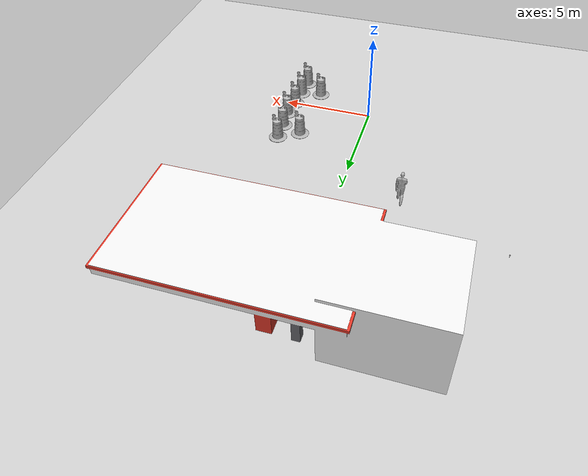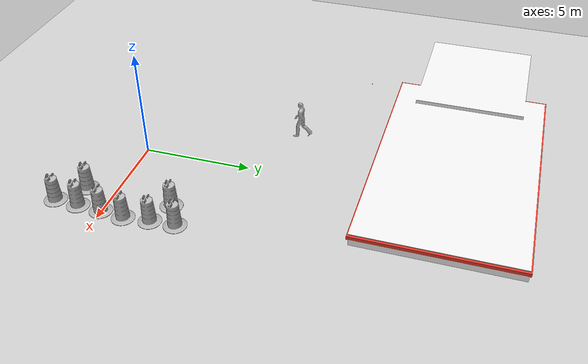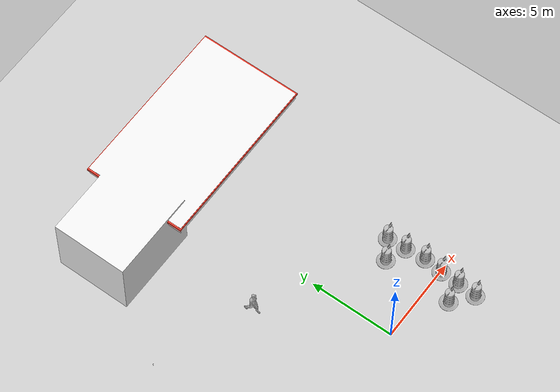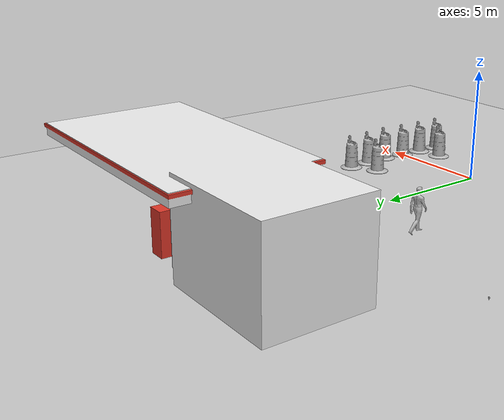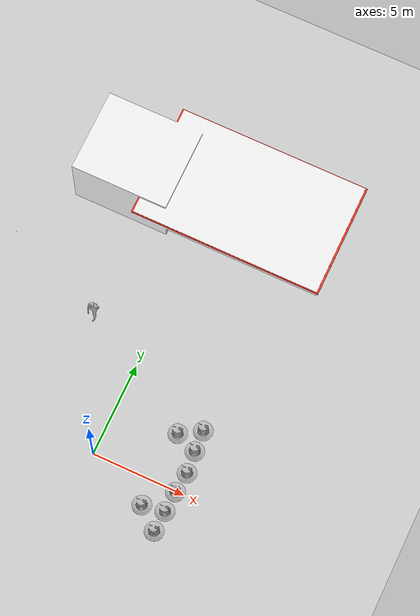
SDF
<sdf version="1.6">
 <world name="default">
  <light name="sun" type="directional">
   <pose>0 0 10 0 -0 0</pose>
   <diffuse>0.8 0.8 0.8 1</diffuse>
   <specular>0.1 0.1 0.1 1</specular>
   <attenuation>
    <range>1000</range>
    <constant>0.9</constant>
    <linear>0.01</linear>
    <quadratic>0.001</quadratic>
   </attenuation>
   <direction>-0.5 0.5 -1</direction>
  </light>
  <model name="ground_plane">
   <static>1</static>
   <link name="link">
    <collision name="collision">
     <geometry><plane><normal>0 0 1</normal><size>100 100</size></plane></geometry>
     <surface><friction><ode><mu>100</mu><mu2>50</mu2></ode></friction></surface>
    </collision>
    <visual name="visual">
     <cast_shadows>0</cast_shadows>
     <geometry><plane><normal>0 0 1</normal><size>100 100</size></plane></geometry>
     <material>
      <script><uri>file://media/materials/scripts/gazebo.material</uri><name>Gazebo/Grey</name></script>
     </material>
    </visual>
   </link>
  </model>
  <gravity>0 0 -9.8</gravity>
  <magnetic_field>6e-06 2.3e-05 -4.2e-05</magnetic_field>
  <atmosphere type="adiabatic"/>
  <physics name="default_physics" default="0" type="ode">
   <max_step_size>0.001</max_step_size>
   <real_time_factor>1</real_time_factor>
   <real_time_update_rate>1000</real_time_update_rate>
  </physics>
  <scene><ambient>0.4 0.4 0.4 1</ambient><background>0.7 0.7 0.7 1</background><shadows>1</shadows></scene>
  <spherical_coordinates>
   <surface_model>EARTH_WGS84</surface_model>
   <latitude_deg>0</latitude_deg>
   <longitude_deg>0</longitude_deg>
   <elevation>0</elevation>
   <heading_deg>0</heading_deg>
  </spherical_coordinates>
  <model name="Gas Station">
   <static>1</static>
   <link name="link">
    <collision name="collision">
     <geometry><mesh><uri>model://gas_station/meshes/gas_station.dae</uri><scale>1 1 1</scale></mesh></geometry>
    </collision>
    <visual name="visual">
     <geometry><mesh><uri>model://gas_station/meshes/gas_station.dae</uri><scale>1 1 1</scale></mesh></geometry>
     <material>
      <script>
       <uri>model://gas_station/materials/scripts</uri>
       <uri>model://gas_station/materials/textures</uri>
       <name>GasStation/Diffuse</name>
      </script>
      <shader type="normal_map_object_space"><normal_map>GasStation_Normal.png</normal_map></shader>
     </material>
    </visual>
   </link>
   <pose>-0.457773 14.2304 0 0 -0 0</pose>
  </model>
  <model name="Construction Barrel">
   <static>1</static>
   <link name="link">
    <inertial>
     <pose>0 0 0.4 0 -0 0</pose>
     <mass>500</mass>
     <inertia><ixx>51.2096</ixx><iyy>51.2096</iyy><izz>25</izz><ixy>0</ixy><ixz>0</ixz><iyz>0</iyz></inertia>
    </inertial>
    <collision name="collision">
     <geometry>
      <mesh><uri>model://construction_barrel/meshes/construction_barrel.dae</uri><scale>1 1 1</scale></mesh>
     </geometry>
    </collision>
    <visual name="visual">
     <geometry>
      <mesh><uri>model://construction_barrel/meshes/construction_barrel.dae</uri><scale>1 1 1</scale></mesh>
     </geometry>
    </visual>
   </link>
   <pose>4.4348 -2.26086 0 0 -0 0</pose>
  </model>
  <model name="Construction Barrel_0">
   <static>1</static>
   <link name="link">
    <inertial>
     <pose>0 0 0.4 0 -0 0</pose>
     <mass>500</mass>
     <inertia><ixx>51.2096</ixx><iyy>51.2096</iyy><izz>25</izz><ixy>0</ixy><ixz>0</ixz><iyz>0</iyz></inertia>
    </inertial>
    <collision name="collision">
     <geometry>
      <mesh><uri>model://construction_barrel/meshes/construction_barrel.dae</uri><scale>1 1 1</scale></mesh>
     </geometry>
    </collision>
    <visual name="visual">
     <geometry>
      <mesh><uri>model://construction_barrel/meshes/construction_barrel.dae</uri><scale>1 1 1</scale></mesh>
     </geometry>
    </visual>
   </link>
   <pose>4.49526 -1.1404 0 0 -0 0</pose>
  </model>
  <model name="Construction Barrel_1">
   <static>1</static>
   <link name="link">
    <inertial>
     <pose>0 0 0.4 0 -0 0</pose>
     <mass>500</mass>
     <inertia><ixx>51.2096</ixx><iyy>51.2096</iyy><izz>25</izz><ixy>0</ixy><ixz>0</ixz><iyz>0</iyz></inertia>
    </inertial>
    <collision name="collision">
     <geometry>
      <mesh><uri>model://construction_barrel/meshes/construction_barrel.dae</uri><scale>1 1 1</scale></mesh>
     </geometry>
    </collision>
    <visual name="visual">
     <geometry>
      <mesh><uri>model://construction_barrel/meshes/construction_barrel.dae</uri><scale>1 1 1</scale></mesh>
     </geometry>
    </visual>
   </link>
   <pose>4.4849 3.37332 0 0 -0 0</pose>
  </model>
  <model name="Speed limit">
   <static>1</static>
   <link name="link">
    <collision name="collision">
     <geometry>
      <mesh><scale>1 1 1</scale><uri>model://speed_limit_sign/meshes/speed_limit_sign.dae</uri></mesh>
     </geometry>
    </collision>
    <visual name="visual">
     <geometry>
      <mesh><scale>1 1 1</scale><uri>model://speed_limit_sign/meshes/speed_limit_sign.dae</uri></mesh>
     </geometry>
    </visual>
   </link>
   <pose>-8.69421 8.84948 0 0 -0 0</pose>
  </model>
  <model name="Construction Barrel_1_clone">
   <static>1</static>
   <link name="link">
    <inertial>
     <pose>0 0 0.4 0 -0 0</pose>
     <mass>500</mass>
     <inertia><ixx>51.2096</ixx><iyy>51.2096</iyy><izz>25</izz><ixy>0</ixy><ixz>0</ixz><iyz>0</iyz></inertia>
    </inertial>
    <collision name="collision">
     <geometry>
      <mesh><uri>model://construction_barrel/meshes/construction_barrel.dae</uri><scale>1 1 1</scale></mesh>
     </geometry>
    </collision>
    <visual name="visual">
     <geometry>
      <mesh><uri>model://construction_barrel/meshes/construction_barrel.dae</uri><scale>1 1 1</scale></mesh>
     </geometry>
    </visual>
   </link>
   <pose>4.54013 2.2502 0 0 -0 0</pose>
  </model>
  <model name="Construction Barrel_1_clone_0">
   <static>1</static>
   <link name="link">
    <inertial>
     <pose>0 0 0.4 0 -0 0</pose>
     <mass>500</mass>
     <inertia><ixx>51.2096</ixx><iyy>51.2096</iyy><izz>25</izz><ixy>0</ixy><ixz>0</ixz><iyz>0</iyz></inertia>
    </inertial>
    <collision name="collision">
     <geometry>
      <mesh><uri>model://construction_barrel/meshes/construction_barrel.dae</uri><scale>1 1 1</scale></mesh>
     </geometry>
    </collision>
    <visual name="visual">
     <geometry>
      <mesh><uri>model://construction_barrel/meshes/construction_barrel.dae</uri><scale>1 1 1</scale></mesh>
     </geometry>
    </visual>
   </link>
   <pose>4.66215 1.07496 0 0 -0 0</pose>
  </model>
  <model name="Construction Barrel_1_clone_1">
   <static>1</static>
   <link name="link">
    <inertial>
     <pose>0 0 0.4 0 -0 0</pose>
     <mass>500</mass>
     <inertia><ixx>51.2096</ixx><iyy>51.2096</iyy><izz>25</izz><ixy>0</ixy><ixz>0</ixz><iyz>0</iyz></inertia>
    </inertial>
    <collision name="collision">
     <geometry>
      <mesh><uri>model://construction_barrel/meshes/construction_barrel.dae</uri><scale>1 1 1</scale></mesh>
     </geometry>
    </collision>
    <visual name="visual">
     <geometry>
      <mesh><uri>model://construction_barrel/meshes/construction_barrel.dae</uri><scale>1 1 1</scale></mesh>
     </geometry>
    </visual>
   </link>
   <pose>4.53996 -0.028882 0 0 -0 0</pose>
  </model>
  <model name="Construction Barrel_1_clone_2">
   <static>1</static>
   <link name="link">
    <inertial>
     <pose>0 0 0.4 0 -0 0</pose>
     <mass>500</mass>
     <inertia><ixx>51.2096</ixx><iyy>51.2096</iyy><izz>25</izz><ixy>0</ixy><ixz>0</ixz><iyz>0</iyz></inertia>
    </inertial>
    <collision name="collision">
     <geometry>
      <mesh><uri>model://construction_barrel/meshes/construction_barrel.dae</uri><scale>1 1 1</scale></mesh>
     </geometry>
    </collision>
    <visual name="visual">
     <geometry>
      <mesh><uri>model://construction_barrel/meshes/construction_barrel.dae</uri><scale>1 1 1</scale></mesh>
     </geometry>
    </visual>
   </link>
   <pose>3.38076 2.71249 0 0 -0 0</pose>
  </model>
  <model name="Construction Barrel_1_clone_3">
   <static>1</static>
   <link name="link">
    <inertial>
     <pose>0 0 0.4 0 -0 0</pose>
     <mass>500</mass>
     <inertia><ixx>51.2096</ixx><iyy>51.2096</iyy><izz>25</izz><ixy>0</ixy><ixz>0</ixz><iyz>0</iyz></inertia>
    </inertial>
    <collision name="collision">
     <geometry>
      <mesh><uri>model://construction_barrel/meshes/construction_barrel.dae</uri><scale>1 1 1</scale></mesh>
     </geometry>
    </collision>
    <visual name="visual">
     <geometry>
      <mesh><uri>model://construction_barrel/meshes/construction_barrel.dae</uri><scale>1 1 1</scale></mesh>
     </geometry>
    </visual>
   </link>
   <pose>3.31834 -1.32997 0 0 -0 0</pose>
  </model>
  <model name="person_walking">
   <link name="link">
    <inertial>
     <pose>0 0 0.95 0 -0 0</pose>
     <mass>80</mass>
     <inertia><ixx>27.82</ixx><ixy>0</ixy><ixz>0</ixz><iyy>24.88</iyy><iyz>0</iyz><izz>4.57</izz></inertia>
    </inertial>
    <collision name="bottom">
     <pose>0 0 0.01 0 -0 0</pose>
     <geometry><box><size>0.35 0.75 0.02</size></box></geometry>
    </collision>
    <collision name="person">
     <pose>0 0 -0.02 0 -0 0</pose>
     <geometry><mesh><uri>model://person_walking/meshes/walking.dae</uri><scale>1 1 1</scale></mesh></geometry>
    </collision>
    <visual name="visual">
     <pose>0 0 -0.02 0 -0 0</pose>
     <geometry><mesh><uri>model://person_walking/meshes/walking.dae</uri><scale>1 1 1</scale></mesh></geometry>
    </visual>
   </link>
   <pose>-3.13538 6.60252 -1e-06 -2e-06 -1e-06 0.000179</pose>
  </model>
 </world>
</sdf>
